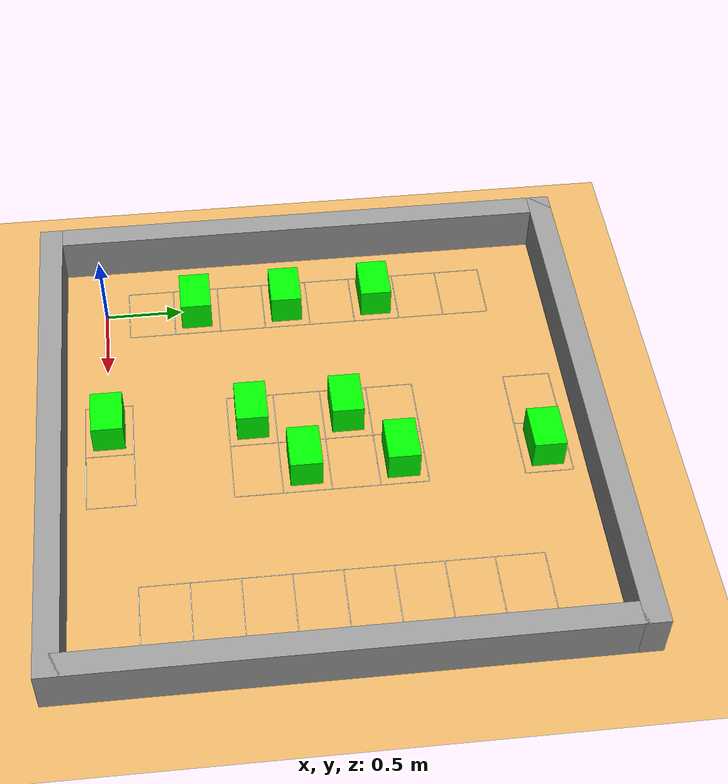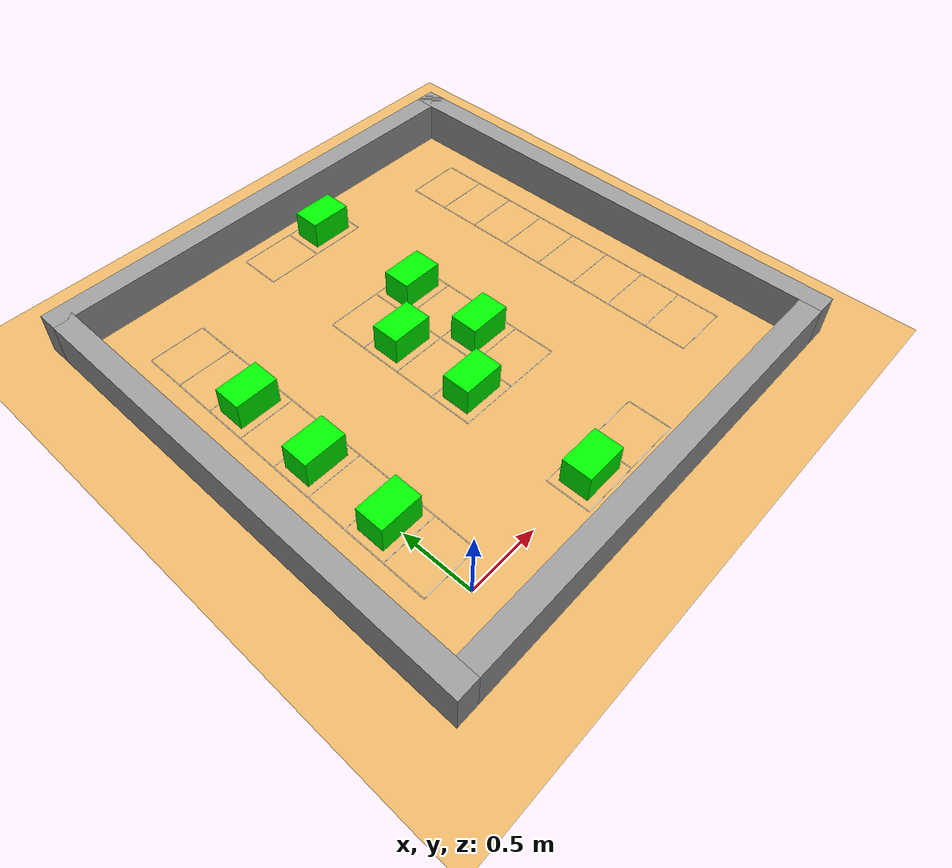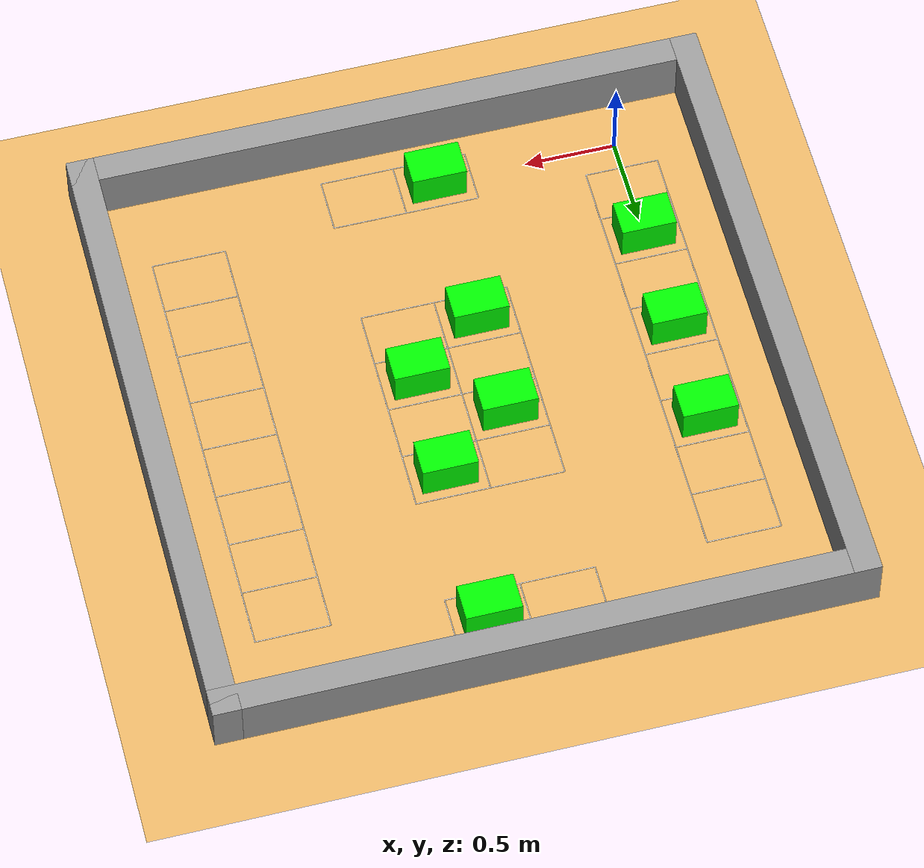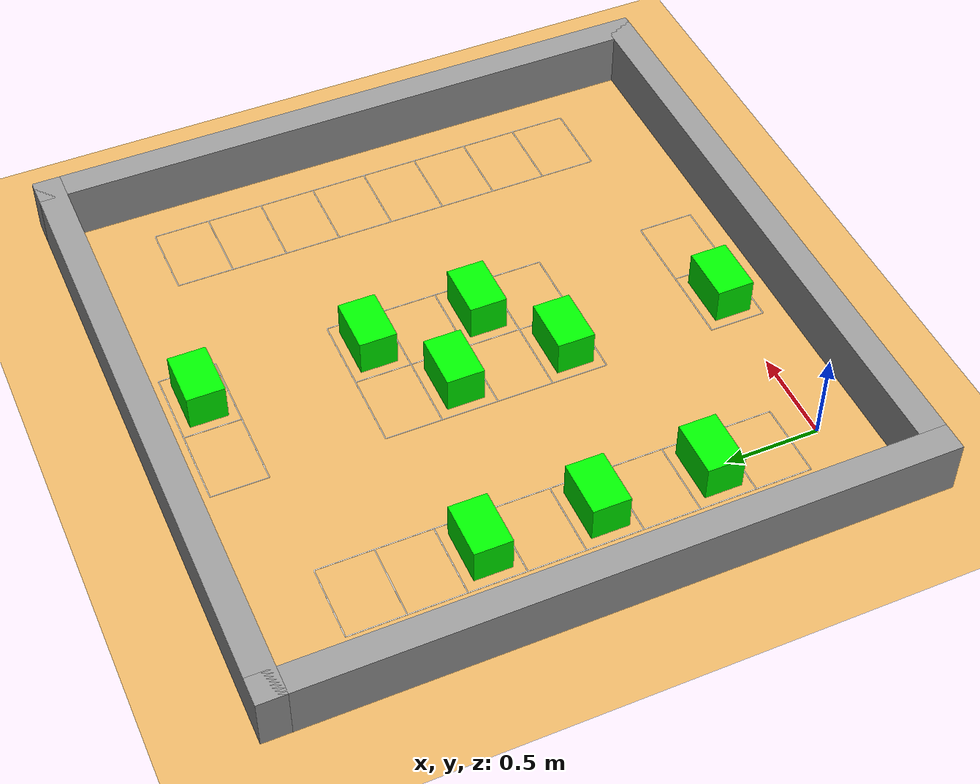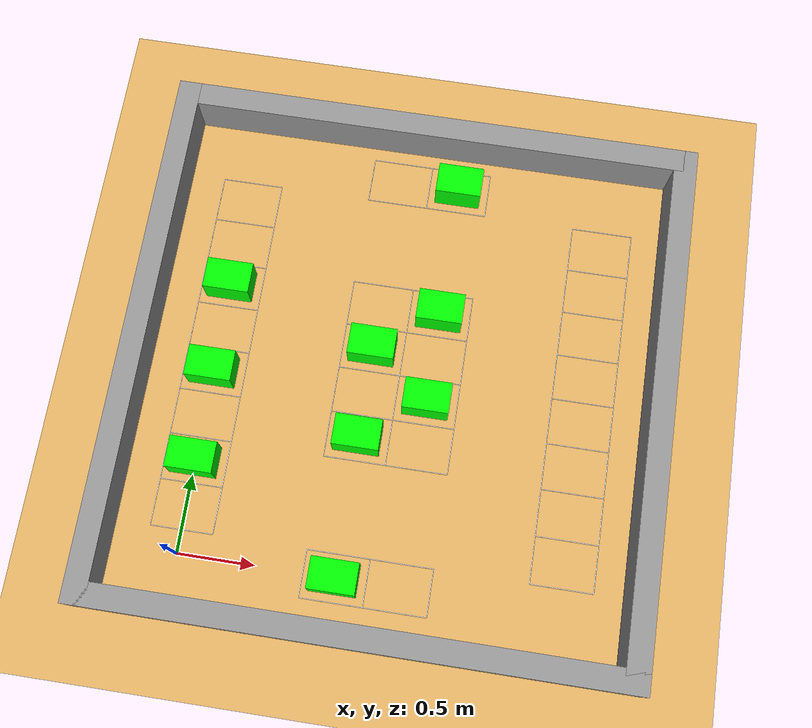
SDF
<sdf version="1.6">
 <world name="parking_lot">
  <include><uri>model://sun</uri></include>
  <model name="wood_ground_plane">
   <static>true</static>
   <link name="ground_link">
    <visual name="ground_visual">
     <geometry><plane><normal>0 0 1</normal><size>20 20</size></plane></geometry>
     <material><ambient>0.9 0.7 0.4 1</ambient><diffuse>0.9 0.7 0.4 1</diffuse></material>
    </visual>
    <collision name="collision">
     <geometry><plane><normal>0 0 1</normal><size>20 20</size></plane></geometry>
    </collision>
   </link>
  </model>
  <model name="parking_wall_3.5m">
   <pose>1.18369 2.06795 0 0 -0 0</pose>
   <link name="Wall_2">
    <collision name="Wall_2_Collision">
     <geometry><box><size>3.5 0.15 0.3</size></box></geometry>
     <pose>0 0 0.15 0 -0 0</pose>
    </collision>
    <visual name="Wall_2_Visual">
     <pose>0 0 0.15 0 -0 0</pose>
     <geometry><box><size>3.5 0.15 0.3</size></box></geometry>
     <material>
      <script><uri>file://media/materials/scripts/gazebo.material</uri><name>Gazebo/Grey</name></script>
      <ambient>1 1 1 1</ambient>
     </material>
     <meta><layer>0</layer></meta>
    </visual>
    <pose>0 0.942857 0 0 -0 3.14159</pose>
   </link>
   <link name="Wall_3">
    <collision name="Wall_3_Collision">
     <geometry><box><size>3.5 0.15 0.3</size></box></geometry>
     <pose>0 0 0.15 0 -0 0</pose>
    </collision>
    <visual name="Wall_3_Visual">
     <pose>0 0 0.15 0 -0 0</pose>
     <geometry><box><size>3.5 0.15 0.3</size></box></geometry>
     <material>
      <script><uri>file://media/materials/scripts/gazebo.material</uri><name>Gazebo/Grey</name></script>
      <ambient>1 1 1 1</ambient>
     </material>
     <meta><layer>0</layer></meta>
    </visual>
    <pose>-1.675 -0.732143 0 0 -0 -1.5708</pose>
   </link>
   <link name="Wall_4">
    <collision name="Wall_4_Collision">
     <geometry><box><size>3.5 0.15 0.3</size></box></geometry>
     <pose>0 0 0.15 0 -0 0</pose>
    </collision>
    <visual name="Wall_4_Visual">
     <pose>0 0 0.15 0 -0 0</pose>
     <geometry><box><size>3.5 0.15 0.3</size></box></geometry>
     <material>
      <script><uri>file://media/materials/scripts/gazebo.material</uri><name>Gazebo/Grey</name></script>
      <ambient>1 1 1 1</ambient>
     </material>
     <meta><layer>0</layer></meta>
    </visual>
    <pose>0 -2.40714 0 0 -0 0</pose>
   </link>
   <link name="Wall_5">
    <collision name="Wall_5_Collision">
     <geometry><box><size>3.5 0.15 0.3</size></box></geometry>
     <pose>0 0 0.15 0 -0 0</pose>
    </collision>
    <visual name="Wall_5_Visual">
     <pose>0 0 0.15 0 -0 0</pose>
     <geometry><box><size>3.5 0.15 0.3</size></box></geometry>
     <material>
      <script><uri>file://media/materials/scripts/gazebo.material</uri><name>Gazebo/Grey</name></script>
      <ambient>1 1 1 1</ambient>
     </material>
     <meta><layer>0</layer></meta>
    </visual>
    <pose>1.675 -0.732143 0 0 -0 1.5708</pose>
   </link>
   <static>1</static>
  </model>
  <model name="parking_spot_1">
   <static>true</static>
   <pose>0 0.3 0 0 0 0</pose>
   <link name="spot_link">
    <visual name="base_plate">
     <geometry><box><size>0.4 0.3 0.001</size></box></geometry>
     <material><ambient>0.9 0.7 0.4 1</ambient><diffuse>0.9 0.7 0.4 1</diffuse></material>
    </visual>
    <visual name="top_border">
     <pose>0 0.15 0.002 0 0 0</pose>
     <geometry><box><size>0.4 0.005 0.001</size></box></geometry>
     <material><ambient>1 1 1 1</ambient><diffuse>1 1 1 1</diffuse></material>
    </visual>
    <visual name="bottom_border">
     <pose>0 -0.15 0.002 0 0 0</pose>
     <geometry><box><size>0.4 0.005 0.001</size></box></geometry>
     <material><ambient>1 1 1 1</ambient><diffuse>1 1 1 1</diffuse></material>
    </visual>
    <visual name="left_border">
     <pose>-0.2 0 0.002 0 0 0</pose>
     <geometry><box><size>0.005 0.3 0.001</size></box></geometry>
     <material><ambient>1 1 1 1</ambient><diffuse>1 1 1 1</diffuse></material>
    </visual>
    <visual name="right_border">
     <pose>0.2 0 0.002 0 0 0</pose>
     <geometry><box><size>0.005 0.3 0.001</size></box></geometry>
     <material><ambient>1 1 1 1</ambient><diffuse>1 1 1 1</diffuse></material>
    </visual>
   </link>
  </model>
  <model name="parking_spot_2">
   <static>true</static>
   <pose>0 0.6 0 0 0 0</pose>
   <link name="spot_link">
    <visual name="base_plate">
     <geometry><box><size>0.4 0.3 0.001</size></box></geometry>
     <material><ambient>0.9 0.7 0.4 1</ambient><diffuse>0.9 0.7 0.4 1</diffuse></material>
    </visual>
    <visual name="top_border">
     <pose>0 0.15 0.002 0 0 0</pose>
     <geometry><box><size>0.4 0.005 0.001</size></box></geometry>
     <material><ambient>1 1 1 1</ambient><diffuse>1 1 1 1</diffuse></material>
    </visual>
    <visual name="bottom_border">
     <pose>0 -0.15 0.002 0 0 0</pose>
     <geometry><box><size>0.4 0.005 0.001</size></box></geometry>
     <material><ambient>1 1 1 1</ambient><diffuse>1 1 1 1</diffuse></material>
    </visual>
    <visual name="left_border">
     <pose>-0.2 0 0.002 0 0 0</pose>
     <geometry><box><size>0.005 0.3 0.001</size></box></geometry>
     <material><ambient>1 1 1 1</ambient><diffuse>1 1 1 1</diffuse></material>
    </visual>
    <visual name="right_border">
     <pose>0.2 0 0.002 0 0 0</pose>
     <geometry><box><size>0.005 0.3 0.001</size></box></geometry>
     <material><ambient>1 1 1 1</ambient><diffuse>1 1 1 1</diffuse></material>
    </visual>
   </link>
  </model>
  <model name="parking_spot_3">
   <static>true</static>
   <pose>0 0.9 0 0 0 0</pose>
   <link name="spot_link">
    <visual name="base_plate">
     <geometry><box><size>0.4 0.3 0.001</size></box></geometry>
     <material><ambient>0.9 0.7 0.4 1</ambient><diffuse>0.9 0.7 0.4 1</diffuse></material>
    </visual>
    <visual name="top_border">
     <pose>0 0.15 0.002 0 0 0</pose>
     <geometry><box><size>0.4 0.005 0.001</size></box></geometry>
     <material><ambient>1 1 1 1</ambient><diffuse>1 1 1 1</diffuse></material>
    </visual>
    <visual name="bottom_border">
     <pose>0 -0.15 0.002 0 0 0</pose>
     <geometry><box><size>0.4 0.005 0.001</size></box></geometry>
     <material><ambient>1 1 1 1</ambient><diffuse>1 1 1 1</diffuse></material>
    </visual>
    <visual name="left_border">
     <pose>-0.2 0 0.002 0 0 0</pose>
     <geometry><box><size>0.005 0.3 0.001</size></box></geometry>
     <material><ambient>1 1 1 1</ambient><diffuse>1 1 1 1</diffuse></material>
    </visual>
    <visual name="right_border">
     <pose>0.2 0 0.002 0 0 0</pose>
     <geometry><box><size>0.005 0.3 0.001</size></box></geometry>
     <material><ambient>1 1 1 1</ambient><diffuse>1 1 1 1</diffuse></material>
    </visual>
   </link>
  </model>
  <model name="parking_spot_4">
   <static>true</static>
   <pose>0 1.2 0 0 0 0</pose>
   <link name="spot_link">
    <visual name="base_plate">
     <geometry><box><size>0.4 0.3 0.001</size></box></geometry>
     <material><ambient>0.9 0.7 0.4 1</ambient><diffuse>0.9 0.7 0.4 1</diffuse></material>
    </visual>
    <visual name="top_border">
     <pose>0 0.15 0.002 0 0 0</pose>
     <geometry><box><size>0.4 0.005 0.001</size></box></geometry>
     <material><ambient>1 1 1 1</ambient><diffuse>1 1 1 1</diffuse></material>
    </visual>
    <visual name="bottom_border">
     <pose>0 -0.15 0.002 0 0 0</pose>
     <geometry><box><size>0.4 0.005 0.001</size></box></geometry>
     <material><ambient>1 1 1 1</ambient><diffuse>1 1 1 1</diffuse></material>
    </visual>
    <visual name="left_border">
     <pose>-0.2 0 0.002 0 0 0</pose>
     <geometry><box><size>0.005 0.3 0.001</size></box></geometry>
     <material><ambient>1 1 1 1</ambient><diffuse>1 1 1 1</diffuse></material>
    </visual>
    <visual name="right_border">
     <pose>0.2 0 0.002 0 0 0</pose>
     <geometry><box><size>0.005 0.3 0.001</size></box></geometry>
     <material><ambient>1 1 1 1</ambient><diffuse>1 1 1 1</diffuse></material>
    </visual>
   </link>
  </model>
  <model name="parking_spot_5">
   <static>true</static>
   <pose>0 1.5 0 0 0 0</pose>
   <link name="spot_link">
    <visual name="base_plate">
     <geometry><box><size>0.4 0.3 0.001</size></box></geometry>
     <material><ambient>0.9 0.7 0.4 1</ambient><diffuse>0.9 0.7 0.4 1</diffuse></material>
    </visual>
    <visual name="top_border">
     <pose>0 0.15 0.002 0 0 0</pose>
     <geometry><box><size>0.4 0.005 0.001</size></box></geometry>
     <material><ambient>1 1 1 1</ambient><diffuse>1 1 1 1</diffuse></material>
    </visual>
    <visual name="bottom_border">
     <pose>0 -0.15 0.002 0 0 0</pose>
     <geometry><box><size>0.4 0.005 0.001</size></box></geometry>
     <material><ambient>1 1 1 1</ambient><diffuse>1 1 1 1</diffuse></material>
    </visual>
    <visual name="left_border">
     <pose>-0.2 0 0.002 0 0 0</pose>
     <geometry><box><size>0.005 0.3 0.001</size></box></geometry>
     <material><ambient>1 1 1 1</ambient><diffuse>1 1 1 1</diffuse></material>
    </visual>
    <visual name="right_border">
     <pose>0.2 0 0.002 0 0 0</pose>
     <geometry><box><size>0.005 0.3 0.001</size></box></geometry>
     <material><ambient>1 1 1 1</ambient><diffuse>1 1 1 1</diffuse></material>
    </visual>
   </link>
  </model>
  <model name="parking_spot_6">
   <static>true</static>
   <pose>0 1.8 0 0 0 0</pose>
   <link name="spot_link">
    <visual name="base_plate">
     <geometry><box><size>0.4 0.3 0.001</size></box></geometry>
     <material><ambient>0.9 0.7 0.4 1</ambient><diffuse>0.9 0.7 0.4 1</diffuse></material>
    </visual>
    <visual name="top_border">
     <pose>0 0.15 0.002 0 0 0</pose>
     <geometry><box><size>0.4 0.005 0.001</size></box></geometry>
     <material><ambient>1 1 1 1</ambient><diffuse>1 1 1 1</diffuse></material>
    </visual>
    <visual name="bottom_border">
     <pose>0 -0.15 0.002 0 0 0</pose>
     <geometry><box><size>0.4 0.005 0.001</size></box></geometry>
     <material><ambient>1 1 1 1</ambient><diffuse>1 1 1 1</diffuse></material>
    </visual>
    <visual name="left_border">
     <pose>-0.2 0 0.002 0 0 0</pose>
     <geometry><box><size>0.005 0.3 0.001</size></box></geometry>
     <material><ambient>1 1 1 1</ambient><diffuse>1 1 1 1</diffuse></material>
    </visual>
    <visual name="right_border">
     <pose>0.2 0 0.002 0 0 0</pose>
     <geometry><box><size>0.005 0.3 0.001</size></box></geometry>
     <material><ambient>1 1 1 1</ambient><diffuse>1 1 1 1</diffuse></material>
    </visual>
   </link>
  </model>
  <model name="parking_spot_7">
   <static>true</static>
   <pose>0 2.1 0 0 0 0</pose>
   <link name="spot_link">
    <visual name="base_plate">
     <geometry><box><size>0.4 0.3 0.001</size></box></geometry>
     <material><ambient>0.9 0.7 0.4 1</ambient><diffuse>0.9 0.7 0.4 1</diffuse></material>
    </visual>
    <visual name="top_border">
     <pose>0 0.15 0.002 0 0 0</pose>
     <geometry><box><size>0.4 0.005 0.001</size></box></geometry>
     <material><ambient>1 1 1 1</ambient><diffuse>1 1 1 1</diffuse></material>
    </visual>
    <visual name="bottom_border">
     <pose>0 -0.15 0.002 0 0 0</pose>
     <geometry><box><size>0.4 0.005 0.001</size></box></geometry>
     <material><ambient>1 1 1 1</ambient><diffuse>1 1 1 1</diffuse></material>
    </visual>
    <visual name="left_border">
     <pose>-0.2 0 0.002 0 0 0</pose>
     <geometry><box><size>0.005 0.3 0.001</size></box></geometry>
     <material><ambient>1 1 1 1</ambient><diffuse>1 1 1 1</diffuse></material>
    </visual>
    <visual name="right_border">
     <pose>0.2 0 0.002 0 0 0</pose>
     <geometry><box><size>0.005 0.3 0.001</size></box></geometry>
     <material><ambient>1 1 1 1</ambient><diffuse>1 1 1 1</diffuse></material>
    </visual>
   </link>
  </model>
  <model name="parking_spot_8">
   <static>true</static>
   <pose>0 2.4 0 0 0 0</pose>
   <link name="spot_link">
    <visual name="base_plate">
     <geometry><box><size>0.4 0.3 0.001</size></box></geometry>
     <material><ambient>0.9 0.7 0.4 1</ambient><diffuse>0.9 0.7 0.4 1</diffuse></material>
    </visual>
    <visual name="top_border">
     <pose>0 0.15 0.002 0 0 0</pose>
     <geometry><box><size>0.4 0.005 0.001</size></box></geometry>
     <material><ambient>1 1 1 1</ambient><diffuse>1 1 1 1</diffuse></material>
    </visual>
    <visual name="bottom_border">
     <pose>0 -0.15 0.002 0 0 0</pose>
     <geometry><box><size>0.4 0.005 0.001</size></box></geometry>
     <material><ambient>1 1 1 1</ambient><diffuse>1 1 1 1</diffuse></material>
    </visual>
    <visual name="left_border">
     <pose>-0.2 0 0.002 0 0 0</pose>
     <geometry><box><size>0.005 0.3 0.001</size></box></geometry>
     <material><ambient>1 1 1 1</ambient><diffuse>1 1 1 1</diffuse></material>
    </visual>
    <visual name="right_border">
     <pose>0.2 0 0.002 0 0 0</pose>
     <geometry><box><size>0.005 0.3 0.001</size></box></geometry>
     <material><ambient>1 1 1 1</ambient><diffuse>1 1 1 1</diffuse></material>
    </visual>
   </link>
  </model>
  <model name="parking_spot_9">
   <static>true</static>
   <pose>1 0 0 0 0 0</pose>
   <link name="spot_link">
    <visual name="base_plate">
     <geometry><box><size>0.4 0.3 0.001</size></box></geometry>
     <material><ambient>0.9 0.7 0.4 1</ambient><diffuse>0.9 0.7 0.4 1</diffuse></material>
    </visual>
    <visual name="top_border">
     <pose>0 0.15 0.002 0 0 0</pose>
     <geometry><box><size>0.4 0.005 0.001</size></box></geometry>
     <material><ambient>1 1 1 1</ambient><diffuse>1 1 1 1</diffuse></material>
    </visual>
    <visual name="bottom_border">
     <pose>0 -0.15 0.002 0 0 0</pose>
     <geometry><box><size>0.4 0.005 0.001</size></box></geometry>
     <material><ambient>1 1 1 1</ambient><diffuse>1 1 1 1</diffuse></material>
    </visual>
    <visual name="left_border">
     <pose>-0.2 0 0.002 0 0 0</pose>
     <geometry><box><size>0.005 0.3 0.001</size></box></geometry>
     <material><ambient>1 1 1 1</ambient><diffuse>1 1 1 1</diffuse></material>
    </visual>
    <visual name="right_border">
     <pose>0.2 0 0.002 0 0 0</pose>
     <geometry><box><size>0.005 0.3 0.001</size></box></geometry>
     <material><ambient>1 1 1 1</ambient><diffuse>1 1 1 1</diffuse></material>
    </visual>
   </link>
  </model>
  <model name="parking_spot_10">
   <static>true</static>
   <pose>1.4 0 0 0 0 0</pose>
   <link name="spot_link">
    <visual name="base_plate">
     <geometry><box><size>0.4 0.3 0.001</size></box></geometry>
     <material><ambient>0.9 0.7 0.4 1</ambient><diffuse>0.9 0.7 0.4 1</diffuse></material>
    </visual>
    <visual name="top_border">
     <pose>0 0.15 0.002 0 0 0</pose>
     <geometry><box><size>0.4 0.005 0.001</size></box></geometry>
     <material><ambient>1 1 1 1</ambient><diffuse>1 1 1 1</diffuse></material>
    </visual>
    <visual name="bottom_border">
     <pose>0 -0.15 0.002 0 0 0</pose>
     <geometry><box><size>0.4 0.005 0.001</size></box></geometry>
     <material><ambient>1 1 1 1</ambient><diffuse>1 1 1 1</diffuse></material>
    </visual>
    <visual name="left_border">
     <pose>-0.2 0 0.002 0 0 0</pose>
     <geometry><box><size>0.005 0.3 0.001</size></box></geometry>
     <material><ambient>1 1 1 1</ambient><diffuse>1 1 1 1</diffuse></material>
    </visual>
    <visual name="right_border">
     <pose>0.2 0 0.002 0 0 0</pose>
     <geometry><box><size>0.005 0.3 0.001</size></box></geometry>
     <material><ambient>1 1 1 1</ambient><diffuse>1 1 1 1</diffuse></material>
    </visual>
   </link>
  </model>
  <model name="parking_spot_11">
   <static>true</static>
   <pose>1 1.8 0 0 0 0</pose>
   <link name="spot_link">
    <visual name="base_plate">
     <geometry><box><size>0.4 0.3 0.001</size></box></geometry>
     <material><ambient>0.9 0.7 0.4 1</ambient><diffuse>0.9 0.7 0.4 1</diffuse></material>
    </visual>
    <visual name="top_border">
     <pose>0 0.15 0.002 0 0 0</pose>
     <geometry><box><size>0.4 0.005 0.001</size></box></geometry>
     <material><ambient>1 1 1 1</ambient><diffuse>1 1 1 1</diffuse></material>
    </visual>
    <visual name="bottom_border">
     <pose>0 -0.15 0.002 0 0 0</pose>
     <geometry><box><size>0.4 0.005 0.001</size></box></geometry>
     <material><ambient>1 1 1 1</ambient><diffuse>1 1 1 1</diffuse></material>
    </visual>
    <visual name="left_border">
     <pose>-0.2 0 0.002 0 0 0</pose>
     <geometry><box><size>0.005 0.3 0.001</size></box></geometry>
     <material><ambient>1 1 1 1</ambient><diffuse>1 1 1 1</diffuse></material>
    </visual>
    <visual name="right_border">
     <pose>0.2 0 0.002 0 0 0</pose>
     <geometry><box><size>0.005 0.3 0.001</size></box></geometry>
     <material><ambient>1 1 1 1</ambient><diffuse>1 1 1 1</diffuse></material>
    </visual>
   </link>
  </model>
  <model name="parking_spot_12">
   <static>true</static>
   <pose>1 1.5 0 0 0 0</pose>
   <link name="spot_link">
    <visual name="base_plate">
     <geometry><box><size>0.4 0.3 0.001</size></box></geometry>
     <material><ambient>0.9 0.7 0.4 1</ambient><diffuse>0.9 0.7 0.4 1</diffuse></material>
    </visual>
    <visual name="top_border">
     <pose>0 0.15 0.002 0 0 0</pose>
     <geometry><box><size>0.4 0.005 0.001</size></box></geometry>
     <material><ambient>1 1 1 1</ambient><diffuse>1 1 1 1</diffuse></material>
    </visual>
    <visual name="bottom_border">
     <pose>0 -0.15 0.002 0 0 0</pose>
     <geometry><box><size>0.4 0.005 0.001</size></box></geometry>
     <material><ambient>1 1 1 1</ambient><diffuse>1 1 1 1</diffuse></material>
    </visual>
    <visual name="left_border">
     <pose>-0.2 0 0.002 0 0 0</pose>
     <geometry><box><size>0.005 0.3 0.001</size></box></geometry>
     <material><ambient>1 1 1 1</ambient><diffuse>1 1 1 1</diffuse></material>
    </visual>
    <visual name="right_border">
     <pose>0.2 0 0.002 0 0 0</pose>
     <geometry><box><size>0.005 0.3 0.001</size></box></geometry>
     <material><ambient>1 1 1 1</ambient><diffuse>1 1 1 1</diffuse></material>
    </visual>
   </link>
  </model>
  <model name="parking_spot_13">
   <static>true</static>
   <pose>1 1.2 0 0 0 0</pose>
   <link name="spot_link">
    <visual name="base_plate">
     <geometry><box><size>0.4 0.3 0.001</size></box></geometry>
     <material><ambient>0.9 0.7 0.4 1</ambient><diffuse>0.9 0.7 0.4 1</diffuse></material>
    </visual>
    <visual name="top_border">
     <pose>0 0.15 0.002 0 0 0</pose>
     <geometry><box><size>0.4 0.005 0.001</size></box></geometry>
     <material><ambient>1 1 1 1</ambient><diffuse>1 1 1 1</diffuse></material>
    </visual>
    <visual name="bottom_border">
     <pose>0 -0.15 0.002 0 0 0</pose>
     <geometry><box><size>0.4 0.005 0.001</size></box></geometry>
     <material><ambient>1 1 1 1</ambient><diffuse>1 1 1 1</diffuse></material>
    </visual>
    <visual name="left_border">
     <pose>-0.2 0 0.002 0 0 0</pose>
     <geometry><box><size>0.005 0.3 0.001</size></box></geometry>
     <material><ambient>1 1 1 1</ambient><diffuse>1 1 1 1</diffuse></material>
    </visual>
    <visual name="right_border">
     <pose>0.2 0 0.002 0 0 0</pose>
     <geometry><box><size>0.005 0.3 0.001</size></box></geometry>
     <material><ambient>1 1 1 1</ambient><diffuse>1 1 1 1</diffuse></material>
    </visual>
   </link>
  </model>
  <model name="parking_spot_14">
   <static>true</static>
   <pose>1 0.9 0 0 0 0</pose>
   <link name="spot_link">
    <visual name="base_plate">
     <geometry><box><size>0.4 0.3 0.001</size></box></geometry>
     <material><ambient>0.9 0.7 0.4 1</ambient><diffuse>0.9 0.7 0.4 1</diffuse></material>
    </visual>
    <visual name="top_border">
     <pose>0 0.15 0.002 0 0 0</pose>
     <geometry><box><size>0.4 0.005 0.001</size></box></geometry>
     <material><ambient>1 1 1 1</ambient><diffuse>1 1 1 1</diffuse></material>
    </visual>
    <visual name="bottom_border">
     <pose>0 -0.15 0.002 0 0 0</pose>
     <geometry><box><size>0.4 0.005 0.001</size></box></geometry>
     <material><ambient>1 1 1 1</ambient><diffuse>1 1 1 1</diffuse></material>
    </visual>
    <visual name="left_border">
     <pose>-0.2 0 0.002 0 0 0</pose>
     <geometry><box><size>0.005 0.3 0.001</size></box></geometry>
     <material><ambient>1 1 1 1</ambient><diffuse>1 1 1 1</diffuse></material>
    </visual>
    <visual name="right_border">
     <pose>0.2 0 0.002 0 0 0</pose>
     <geometry><box><size>0.005 0.3 0.001</size></box></geometry>
     <material><ambient>1 1 1 1</ambient><diffuse>1 1 1 1</diffuse></material>
    </visual>
   </link>
  </model>
  <model name="parking_spot_15">
   <static>true</static>
   <pose>1.4 1.8 0 0 0 0</pose>
   <link name="spot_link">
    <visual name="base_plate">
     <geometry><box><size>0.4 0.3 0.001</size></box></geometry>
     <material><ambient>0.9 0.7 0.4 1</ambient><diffuse>0.9 0.7 0.4 1</diffuse></material>
    </visual>
    <visual name="top_border">
     <pose>0 0.15 0.002 0 0 0</pose>
     <geometry><box><size>0.4 0.005 0.001</size></box></geometry>
     <material><ambient>1 1 1 1</ambient><diffuse>1 1 1 1</diffuse></material>
    </visual>
    <visual name="bottom_border">
     <pose>0 -0.15 0.002 0 0 0</pose>
     <geometry><box><size>0.4 0.005 0.001</size></box></geometry>
     <material><ambient>1 1 1 1</ambient><diffuse>1 1 1 1</diffuse></material>
    </visual>
    <visual name="left_border">
     <pose>-0.2 0 0.002 0 0 0</pose>
     <geometry><box><size>0.005 0.3 0.001</size></box></geometry>
     <material><ambient>1 1 1 1</ambient><diffuse>1 1 1 1</diffuse></material>
    </visual>
    <visual name="right_border">
     <pose>0.2 0 0.002 0 0 0</pose>
     <geometry><box><size>0.005 0.3 0.001</size></box></geometry>
     <material><ambient>1 1 1 1</ambient><diffuse>1 1 1 1</diffuse></material>
    </visual>
   </link>
  </model>
  <model name="parking_spot_16">
   <static>true</static>
   <pose>1.4 1.5 0 0 0 0</pose>
   <link name="spot_link">
    <visual name="base_plate">
     <geometry><box><size>0.4 0.3 0.001</size></box></geometry>
     <material><ambient>0.9 0.7 0.4 1</ambient><diffuse>0.9 0.7 0.4 1</diffuse></material>
    </visual>
    <visual name="top_border">
     <pose>0 0.15 0.002 0 0 0</pose>
     <geometry><box><size>0.4 0.005 0.001</size></box></geometry>
     <material><ambient>1 1 1 1</ambient><diffuse>1 1 1 1</diffuse></material>
    </visual>
    <visual name="bottom_border">
     <pose>0 -0.15 0.002 0 0 0</pose>
     <geometry><box><size>0.4 0.005 0.001</size></box></geometry>
     <material><ambient>1 1 1 1</ambient><diffuse>1 1 1 1</diffuse></material>
    </visual>
    <visual name="left_border">
     <pose>-0.2 0 0.002 0 0 0</pose>
     <geometry><box><size>0.005 0.3 0.001</size></box></geometry>
     <material><ambient>1 1 1 1</ambient><diffuse>1 1 1 1</diffuse></material>
    </visual>
    <visual name="right_border">
     <pose>0.2 0 0.002 0 0 0</pose>
     <geometry><box><size>0.005 0.3 0.001</size></box></geometry>
     <material><ambient>1 1 1 1</ambient><diffuse>1 1 1 1</diffuse></material>
    </visual>
   </link>
  </model>
  <model name="parking_spot_17">
   <static>true</static>
   <pose>1.4 1.2 0 0 0 0</pose>
   <link name="spot_link">
    <visual name="base_plate">
     <geometry><box><size>0.4 0.3 0.001</size></box></geometry>
     <material><ambient>0.9 0.7 0.4 1</ambient><diffuse>0.9 0.7 0.4 1</diffuse></material>
    </visual>
    <visual name="top_border">
     <pose>0 0.15 0.002 0 0 0</pose>
     <geometry><box><size>0.4 0.005 0.001</size></box></geometry>
     <material><ambient>1 1 1 1</ambient><diffuse>1 1 1 1</diffuse></material>
    </visual>
    <visual name="bottom_border">
     <pose>0 -0.15 0.002 0 0 0</pose>
     <geometry><box><size>0.4 0.005 0.001</size></box></geometry>
     <material><ambient>1 1 1 1</ambient><diffuse>1 1 1 1</diffuse></material>
    </visual>
    <visual name="left_border">
     <pose>-0.2 0 0.002 0 0 0</pose>
     <geometry><box><size>0.005 0.3 0.001</size></box></geometry>
     <material><ambient>1 1 1 1</ambient><diffuse>1 1 1 1</diffuse></material>
    </visual>
    <visual name="right_border">
     <pose>0.2 0 0.002 0 0 0</pose>
     <geometry><box><size>0.005 0.3 0.001</size></box></geometry>
     <material><ambient>1 1 1 1</ambient><diffuse>1 1 1 1</diffuse></material>
    </visual>
   </link>
  </model>
  <model name="parking_spot_18">
   <static>true</static>
   <pose>1.4 0.9 0 0 0 0</pose>
   <link name="spot_link">
    <visual name="base_plate">
     <geometry><box><size>0.4 0.3 0.001</size></box></geometry>
     <material><ambient>0.9 0.7 0.4 1</ambient><diffuse>0.9 0.7 0.4 1</diffuse></material>
    </visual>
    <visual name="top_border">
     <pose>0 0.15 0.002 0 0 0</pose>
     <geometry><box><size>0.4 0.005 0.001</size></box></geometry>
     <material><ambient>1 1 1 1</ambient><diffuse>1 1 1 1</diffuse></material>
    </visual>
    <visual name="bottom_border">
     <pose>0 -0.15 0.002 0 0 0</pose>
     <geometry><box><size>0.4 0.005 0.001</size></box></geometry>
     <material><ambient>1 1 1 1</ambient><diffuse>1 1 1 1</diffuse></material>
    </visual>
    <visual name="left_border">
     <pose>-0.2 0 0.002 0 0 0</pose>
     <geometry><box><size>0.005 0.3 0.001</size></box></geometry>
     <material><ambient>1 1 1 1</ambient><diffuse>1 1 1 1</diffuse></material>
    </visual>
    <visual name="right_border">
     <pose>0.2 0 0.002 0 0 0</pose>
     <geometry><box><size>0.005 0.3 0.001</size></box></geometry>
     <material><ambient>1 1 1 1</ambient><diffuse>1 1 1 1</diffuse></material>
    </visual>
   </link>
  </model>
  <model name="parking_spot_19">
   <static>true</static>
   <pose>1 2.7 0 0 0 0</pose>
   <link name="spot_link">
    <visual name="base_plate">
     <geometry><box><size>0.4 0.3 0.001</size></box></geometry>
     <material><ambient>0.9 0.7 0.4 1</ambient><diffuse>0.9 0.7 0.4 1</diffuse></material>
    </visual>
    <visual name="top_border">
     <pose>0 0.15 0.002 0 0 0</pose>
     <geometry><box><size>0.4 0.005 0.001</size></box></geometry>
     <material><ambient>1 1 1 1</ambient><diffuse>1 1 1 1</diffuse></material>
    </visual>
    <visual name="bottom_border">
     <pose>0 -0.15 0.002 0 0 0</pose>
     <geometry><box><size>0.4 0.005 0.001</size></box></geometry>
     <material><ambient>1 1 1 1</ambient><diffuse>1 1 1 1</diffuse></material>
    </visual>
    <visual name="left_border">
     <pose>-0.2 0 0.002 0 0 0</pose>
     <geometry><box><size>0.005 0.3 0.001</size></box></geometry>
     <material><ambient>1 1 1 1</ambient><diffuse>1 1 1 1</diffuse></material>
    </visual>
    <visual name="right_border">
     <pose>0.2 0 0.002 0 0 0</pose>
     <geometry><box><size>0.005 0.3 0.001</size></box></geometry>
     <material><ambient>1 1 1 1</ambient><diffuse>1 1 1 1</diffuse></material>
    </visual>
   </link>
  </model>
  <model name="parking_spot_20">
   <static>true</static>
   <pose>1.4 2.7 0 0 0 0</pose>
   <link name="spot_link">
    <visual name="base_plate">
     <geometry><box><size>0.4 0.3 0.001</size></box></geometry>
     <material><ambient>0.9 0.7 0.4 1</ambient><diffuse>0.9 0.7 0.4 1</diffuse></material>
    </visual>
    <visual name="top_border">
     <pose>0 0.15 0.002 0 0 0</pose>
     <geometry><box><size>0.4 0.005 0.001</size></box></geometry>
     <material><ambient>1 1 1 1</ambient><diffuse>1 1 1 1</diffuse></material>
    </visual>
    <visual name="bottom_border">
     <pose>0 -0.15 0.002 0 0 0</pose>
     <geometry><box><size>0.4 0.005 0.001</size></box></geometry>
     <material><ambient>1 1 1 1</ambient><diffuse>1 1 1 1</diffuse></material>
    </visual>
    <visual name="left_border">
     <pose>-0.2 0 0.002 0 0 0</pose>
     <geometry><box><size>0.005 0.3 0.001</size></box></geometry>
     <material><ambient>1 1 1 1</ambient><diffuse>1 1 1 1</diffuse></material>
    </visual>
    <visual name="right_border">
     <pose>0.2 0 0.002 0 0 0</pose>
     <geometry><box><size>0.005 0.3 0.001</size></box></geometry>
     <material><ambient>1 1 1 1</ambient><diffuse>1 1 1 1</diffuse></material>
    </visual>
   </link>
  </model>
  <model name="parking_spot_21">
   <static>true</static>
   <pose>2.4 2.4 0 0 0 0</pose>
   <link name="spot_link">
    <visual name="base_plate">
     <geometry><box><size>0.4 0.3 0.001</size></box></geometry>
     <material><ambient>0.9 0.7 0.4 1</ambient><diffuse>0.9 0.7 0.4 1</diffuse></material>
    </visual>
    <visual name="top_border">
     <pose>0 0.15 0.002 0 0 0</pose>
     <geometry><box><size>0.4 0.005 0.001</size></box></geometry>
     <material><ambient>1 1 1 1</ambient><diffuse>1 1 1 1</diffuse></material>
    </visual>
    <visual name="bottom_border">
     <pose>0 -0.15 0.002 0 0 0</pose>
     <geometry><box><size>0.4 0.005 0.001</size></box></geometry>
     <material><ambient>1 1 1 1</ambient><diffuse>1 1 1 1</diffuse></material>
    </visual>
    <visual name="left_border">
     <pose>-0.2 0 0.002 0 0 0</pose>
     <geometry><box><size>0.005 0.3 0.001</size></box></geometry>
     <material><ambient>1 1 1 1</ambient><diffuse>1 1 1 1</diffuse></material>
    </visual>
    <visual name="right_border">
     <pose>0.2 0 0.002 0 0 0</pose>
     <geometry><box><size>0.005 0.3 0.001</size></box></geometry>
     <material><ambient>1 1 1 1</ambient><diffuse>1 1 1 1</diffuse></material>
    </visual>
   </link>
  </model>
  <model name="parking_spot_22">
   <static>true</static>
   <pose>2.4 2.1 0 0 0 0</pose>
   <link name="spot_link">
    <visual name="base_plate">
     <geometry><box><size>0.4 0.3 0.001</size></box></geometry>
     <material><ambient>0.9 0.7 0.4 1</ambient><diffuse>0.9 0.7 0.4 1</diffuse></material>
    </visual>
    <visual name="top_border">
     <pose>0 0.15 0.002 0 0 0</pose>
     <geometry><box><size>0.4 0.005 0.001</size></box></geometry>
     <material><ambient>1 1 1 1</ambient><diffuse>1 1 1 1</diffuse></material>
    </visual>
    <visual name="bottom_border">
     <pose>0 -0.15 0.002 0 0 0</pose>
     <geometry><box><size>0.4 0.005 0.001</size></box></geometry>
     <material><ambient>1 1 1 1</ambient><diffuse>1 1 1 1</diffuse></material>
    </visual>
    <visual name="left_border">
     <pose>-0.2 0 0.002 0 0 0</pose>
     <geometry><box><size>0.005 0.3 0.001</size></box></geometry>
     <material><ambient>1 1 1 1</ambient><diffuse>1 1 1 1</diffuse></material>
    </visual>
    <visual name="right_border">
     <pose>0.2 0 0.002 0 0 0</pose>
     <geometry><box><size>0.005 0.3 0.001</size></box></geometry>
     <material><ambient>1 1 1 1</ambient><diffuse>1 1 1 1</diffuse></material>
    </visual>
   </link>
  </model>
  <model name="parking_spot_23">
   <static>true</static>
   <pose>2.4 1.8 0 0 0 0</pose>
   <link name="spot_link">
    <visual name="base_plate">
     <geometry><box><size>0.4 0.3 0.001</size></box></geometry>
     <material><ambient>0.9 0.7 0.4 1</ambient><diffuse>0.9 0.7 0.4 1</diffuse></material>
    </visual>
    <visual name="top_border">
     <pose>0 0.15 0.002 0 0 0</pose>
     <geometry><box><size>0.4 0.005 0.001</size></box></geometry>
     <material><ambient>1 1 1 1</ambient><diffuse>1 1 1 1</diffuse></material>
    </visual>
    <visual name="bottom_border">
     <pose>0 -0.15 0.002 0 0 0</pose>
     <geometry><box><size>0.4 0.005 0.001</size></box></geometry>
     <material><ambient>1 1 1 1</ambient><diffuse>1 1 1 1</diffuse></material>
    </visual>
    <visual name="left_border">
     <pose>-0.2 0 0.002 0 0 0</pose>
     <geometry><box><size>0.005 0.3 0.001</size></box></geometry>
     <material><ambient>1 1 1 1</ambient><diffuse>1 1 1 1</diffuse></material>
    </visual>
    <visual name="right_border">
     <pose>0.2 0 0.002 0 0 0</pose>
     <geometry><box><size>0.005 0.3 0.001</size></box></geometry>
     <material><ambient>1 1 1 1</ambient><diffuse>1 1 1 1</diffuse></material>
    </visual>
   </link>
  </model>
  <model name="parking_spot_24">
   <static>true</static>
   <pose>2.4 1.5 0 0 0 0</pose>
   <link name="spot_link">
    <visual name="base_plate">
     <geometry><box><size>0.4 0.3 0.001</size></box></geometry>
     <material><ambient>0.9 0.7 0.4 1</ambient><diffuse>0.9 0.7 0.4 1</diffuse></material>
    </visual>
    <visual name="top_border">
     <pose>0 0.15 0.002 0 0 0</pose>
     <geometry><box><size>0.4 0.005 0.001</size></box></geometry>
     <material><ambient>1 1 1 1</ambient><diffuse>1 1 1 1</diffuse></material>
    </visual>
    <visual name="bottom_border">
     <pose>0 -0.15 0.002 0 0 0</pose>
     <geometry><box><size>0.4 0.005 0.001</size></box></geometry>
     <material><ambient>1 1 1 1</ambient><diffuse>1 1 1 1</diffuse></material>
    </visual>
    <visual name="left_border">
     <pose>-0.2 0 0.002 0 0 0</pose>
     <geometry><box><size>0.005 0.3 0.001</size></box></geometry>
     <material><ambient>1 1 1 1</ambient><diffuse>1 1 1 1</diffuse></material>
    </visual>
    <visual name="right_border">
     <pose>0.2 0 0.002 0 0 0</pose>
     <geometry><box><size>0.005 0.3 0.001</size></box></geometry>
     <material><ambient>1 1 1 1</ambient><diffuse>1 1 1 1</diffuse></material>
    </visual>
   </link>
  </model>
  <model name="parking_spot_25">
   <static>true</static>
   <pose>2.4 1.2 0 0 0 0</pose>
   <link name="spot_link">
    <visual name="base_plate">
     <geometry><box><size>0.4 0.3 0.001</size></box></geometry>
     <material><ambient>0.9 0.7 0.4 1</ambient><diffuse>0.9 0.7 0.4 1</diffuse></material>
    </visual>
    <visual name="top_border">
     <pose>0 0.15 0.002 0 0 0</pose>
     <geometry><box><size>0.4 0.005 0.001</size></box></geometry>
     <material><ambient>1 1 1 1</ambient><diffuse>1 1 1 1</diffuse></material>
    </visual>
    <visual name="bottom_border">
     <pose>0 -0.15 0.002 0 0 0</pose>
     <geometry><box><size>0.4 0.005 0.001</size></box></geometry>
     <material><ambient>1 1 1 1</ambient><diffuse>1 1 1 1</diffuse></material>
    </visual>
    <visual name="left_border">
     <pose>-0.2 0 0.002 0 0 0</pose>
     <geometry><box><size>0.005 0.3 0.001</size></box></geometry>
     <material><ambient>1 1 1 1</ambient><diffuse>1 1 1 1</diffuse></material>
    </visual>
    <visual name="right_border">
     <pose>0.2 0 0.002 0 0 0</pose>
     <geometry><box><size>0.005 0.3 0.001</size></box></geometry>
     <material><ambient>1 1 1 1</ambient><diffuse>1 1 1 1</diffuse></material>
    </visual>
   </link>
  </model>
  <model name="parking_spot_26">
   <static>true</static>
   <pose>2.4 0.9 0 0 0 0</pose>
   <link name="spot_link">
    <visual name="base_plate">
     <geometry><box><size>0.4 0.3 0.001</size></box></geometry>
     <material><ambient>0.9 0.7 0.4 1</ambient><diffuse>0.9 0.7 0.4 1</diffuse></material>
    </visual>
    <visual name="top_border">
     <pose>0 0.15 0.002 0 0 0</pose>
     <geometry><box><size>0.4 0.005 0.001</size></box></geometry>
     <material><ambient>1 1 1 1</ambient><diffuse>1 1 1 1</diffuse></material>
    </visual>
    <visual name="bottom_border">
     <pose>0 -0.15 0.002 0 0 0</pose>
     <geometry><box><size>0.4 0.005 0.001</size></box></geometry>
     <material><ambient>1 1 1 1</ambient><diffuse>1 1 1 1</diffuse></material>
    </visual>
    <visual name="left_border">
     <pose>-0.2 0 0.002 0 0 0</pose>
     <geometry><box><size>0.005 0.3 0.001</size></box></geometry>
     <material><ambient>1 1 1 1</ambient><diffuse>1 1 1 1</diffuse></material>
    </visual>
    <visual name="right_border">
     <pose>0.2 0 0.002 0 0 0</pose>
     <geometry><box><size>0.005 0.3 0.001</size></box></geometry>
     <material><ambient>1 1 1 1</ambient><diffuse>1 1 1 1</diffuse></material>
    </visual>
   </link>
  </model>
  <model name="parking_spot_27">
   <static>true</static>
   <pose>2.4 0.6 0 0 0 0</pose>
   <link name="spot_link">
    <visual name="base_plate">
     <geometry><box><size>0.4 0.3 0.001</size></box></geometry>
     <material><ambient>0.9 0.7 0.4 1</ambient><diffuse>0.9 0.7 0.4 1</diffuse></material>
    </visual>
    <visual name="top_border">
     <pose>0 0.15 0.002 0 0 0</pose>
     <geometry><box><size>0.4 0.005 0.001</size></box></geometry>
     <material><ambient>1 1 1 1</ambient><diffuse>1 1 1 1</diffuse></material>
    </visual>
    <visual name="bottom_border">
     <pose>0 -0.15 0.002 0 0 0</pose>
     <geometry><box><size>0.4 0.005 0.001</size></box></geometry>
     <material><ambient>1 1 1 1</ambient><diffuse>1 1 1 1</diffuse></material>
    </visual>
    <visual name="left_border">
     <pose>-0.2 0 0.002 0 0 0</pose>
     <geometry><box><size>0.005 0.3 0.001</size></box></geometry>
     <material><ambient>1 1 1 1</ambient><diffuse>1 1 1 1</diffuse></material>
    </visual>
    <visual name="right_border">
     <pose>0.2 0 0.002 0 0 0</pose>
     <geometry><box><size>0.005 0.3 0.001</size></box></geometry>
     <material><ambient>1 1 1 1</ambient><diffuse>1 1 1 1</diffuse></material>
    </visual>
   </link>
  </model>
  <model name="parking_spot_28">
   <static>true</static>
   <pose>2.4 0.3 0 0 0 0</pose>
   <link name="spot_link">
    <visual name="base_plate">
     <geometry><box><size>0.4 0.3 0.001</size></box></geometry>
     <material><ambient>0.9 0.7 0.4 1</ambient><diffuse>0.9 0.7 0.4 1</diffuse></material>
    </visual>
    <visual name="top_border">
     <pose>0 0.15 0.002 0 0 0</pose>
     <geometry><box><size>0.4 0.005 0.001</size></box></geometry>
     <material><ambient>1 1 1 1</ambient><diffuse>1 1 1 1</diffuse></material>
    </visual>
    <visual name="bottom_border">
     <pose>0 -0.15 0.002 0 0 0</pose>
     <geometry><box><size>0.4 0.005 0.001</size></box></geometry>
     <material><ambient>1 1 1 1</ambient><diffuse>1 1 1 1</diffuse></material>
    </visual>
    <visual name="left_border">
     <pose>-0.2 0 0.002 0 0 0</pose>
     <geometry><box><size>0.005 0.3 0.001</size></box></geometry>
     <material><ambient>1 1 1 1</ambient><diffuse>1 1 1 1</diffuse></material>
    </visual>
    <visual name="right_border">
     <pose>0.2 0 0.002 0 0 0</pose>
     <geometry><box><size>0.005 0.3 0.001</size></box></geometry>
     <material><ambient>1 1 1 1</ambient><diffuse>1 1 1 1</diffuse></material>
    </visual>
   </link>
  </model>
  <model name="colored_box_1">
   <static>false</static>
   <pose>0 0.6 0.1 0 0 0</pose>
   <link name="box_link">
    <visual name="box_visual">
     <geometry><box><size>0.3 0.2 0.2</size></box></geometry>
     <material><ambient>0 1 0 1</ambient><diffuse>0 1 0 1</diffuse></material>
    </visual>
    <collision name="box_collision"><geometry><box><size>0.3 0.2 0.2</size></box></geometry></collision>
   </link>
  </model>
  <model name="colored_box_2">
   <static>false</static>
   <pose>0 1.2 0.1 0 0 0</pose>
   <link name="box_link">
    <visual name="box_visual">
     <geometry><box><size>0.3 0.2 0.2</size></box></geometry>
     <material><ambient>0 1 0 1</ambient><diffuse>0 1 0 1</diffuse></material>
    </visual>
    <collision name="box_collision"><geometry><box><size>0.3 0.2 0.2</size></box></geometry></collision>
   </link>
  </model>
  <model name="colored_box_3">
   <static>false</static>
   <pose>1 0 0.1 0 0 0</pose>
   <link name="box_link">
    <visual name="box_visual">
     <geometry><box><size>0.3 0.2 0.2</size></box></geometry>
     <material><ambient>0 1 0 1</ambient><diffuse>0 1 0 1</diffuse></material>
    </visual>
    <collision name="box_collision"><geometry><box><size>0.3 0.2 0.2</size></box></geometry></collision>
   </link>
  </model>
  <model name="colored_box_4">
   <static>false</static>
   <pose>1 0.9 0.1 0 0 0</pose>
   <link name="box_link">
    <visual name="box_visual">
     <geometry><box><size>0.3 0.2 0.2</size></box></geometry>
     <material><ambient>0 1 0 1</ambient><diffuse>0 1 0 1</diffuse></material>
    </visual>
    <collision name="box_collision"><geometry><box><size>0.3 0.2 0.2</size></box></geometry></collision>
   </link>
  </model>
  <model name="colored_box_5">
   <static>false</static>
   <pose>1 1.5 0.1 0 0 0</pose>
   <link name="box_link">
    <visual name="box_visual">
     <geometry><box><size>0.3 0.2 0.2</size></box></geometry>
     <material><ambient>0 1 0 1</ambient><diffuse>0 1 0 1</diffuse></material>
    </visual>
    <collision name="box_collision"><geometry><box><size>0.3 0.2 0.2</size></box></geometry></collision>
   </link>
  </model>
  <model name="colored_box_6">
   <static>false</static>
   <pose>1.4 1.2 0.1 0 0 0</pose>
   <link name="box_link">
    <visual name="box_visual">
     <geometry><box><size>0.3 0.2 0.2</size></box></geometry>
     <material><ambient>0 1 0 1</ambient><diffuse>0 1 0 1</diffuse></material>
    </visual>
    <collision name="box_collision"><geometry><box><size>0.3 0.2 0.2</size></box></geometry></collision>
   </link>
  </model>
  <model name="colored_box_7">
   <static>false</static>
   <pose>0 1.8 0.1 0 0 0</pose>
   <link name="box_link">
    <visual name="box_visual">
     <geometry><box><size>0.3 0.2 0.2</size></box></geometry>
     <material><ambient>0 1 0 1</ambient><diffuse>0 1 0 1</diffuse></material>
    </visual>
    <collision name="box_collision"><geometry><box><size>0.3 0.2 0.2</size></box></geometry></collision>
   </link>
  </model>
  <model name="colored_box_8">
   <static>false</static>
   <pose>1.4 1.8 0.1 0 0 0</pose>
   <link name="box_link">
    <visual name="box_visual">
     <geometry><box><size>0.3 0.2 0.2</size></box></geometry>
     <material><ambient>0 1 0 1</ambient><diffuse>0 1 0 1</diffuse></material>
    </visual>
    <collision name="box_collision"><geometry><box><size>0.3 0.2 0.2</size></box></geometry></collision>
   </link>
  </model>
  <model name="colored_box_9">
   <static>false</static>
   <pose>1.4 2.7 0.1 0 0 0</pose>
   <link name="box_link">
    <visual name="box_visual">
     <geometry><box><size>0.3 0.2 0.2</size></box></geometry>
     <material><ambient>0 1 0 1</ambient><diffuse>0 1 0 1</diffuse></material>
    </visual>
    <collision name="box_collision"><geometry><box><size>0.3 0.2 0.2</size></box></geometry></collision>
   </link>
  </model>
 </world>
</sdf>
